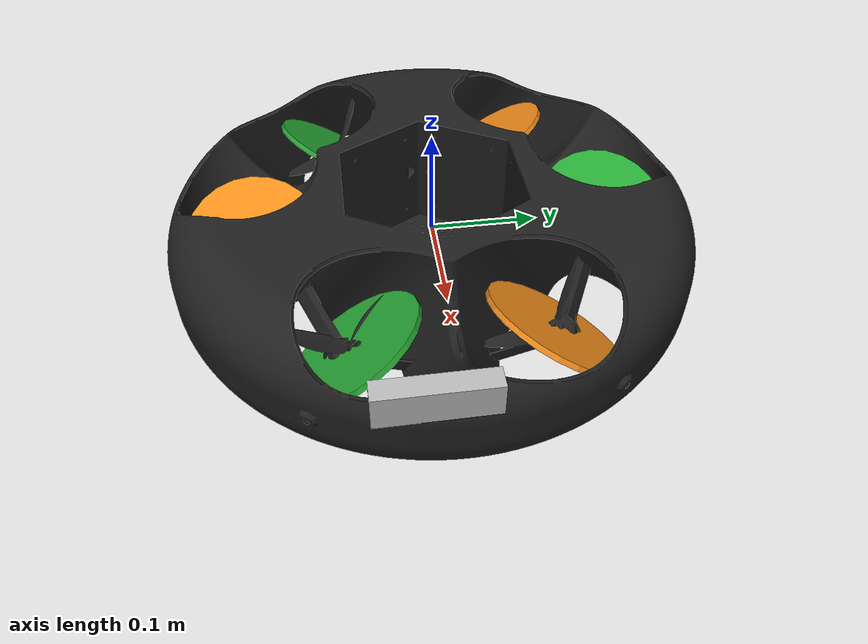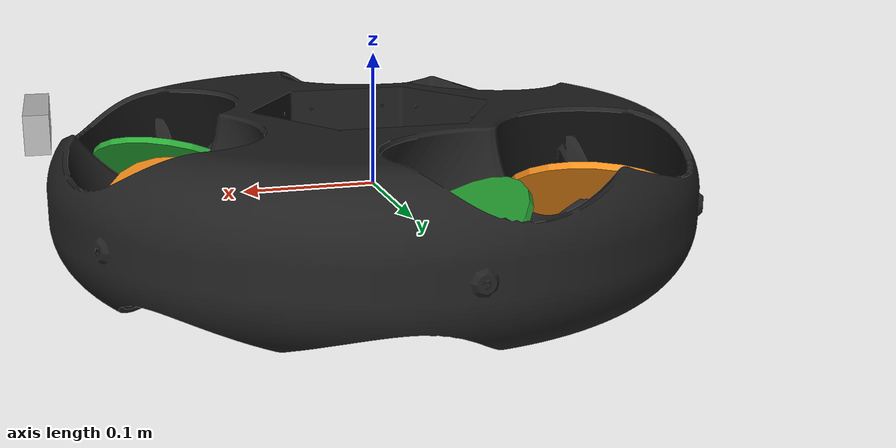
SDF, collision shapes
<?xml version="1.0" encoding="UTF-8"?>
<sdf version='1.9'>
  <model name='space_cobot'>
    <self_collide>false</self_collide>
    <static>false</static>

    <link name='base_link'>
      <pose>0 0 0 0 -0 0</pose>

      <inertial>
        <pose>0 0 0 0 -0 0</pose>
        <mass>3.4</mass>
        <inertia>
          <ixx>0.085225</ixx>
          <ixy>0</ixy>
          <ixz>0</ixz>
          <iyy>0.085225</iyy>
          <iyz>0</iyz>
          <izz>0.085225</izz>
        </inertia>
      </inertial>

      <collision name='base_link_inertia_collision'>
        <pose>0 0 0 0 -0 0</pose>
        <geometry>
          <mesh>
            <scale>1.0 1.0 1.0</scale>
            <uri>model://space_cobot/meshes/cobot.dae</uri>
          </mesh>
        </geometry>
        <surface>
          <contact>
            <ode>
              <min_depth>0.001</min_depth>
              <max_vel>0</max_vel>
            </ode>
          </contact>
          <friction>
            <ode/>
          </friction>
        </surface>
      </collision>

      <visual name='base_link_inertia_visual'>
        <pose>0.0 0.0 0.0 0 -0 0</pose>
        <geometry>
          <mesh>
            <scale>1.0 1.0 1.0</scale>
            <uri>model://space_cobot/meshes/cobot.dae</uri>
          </mesh>
        </geometry>
        <material>
          <script>
            <name>Gazebo/Black</name>
            <uri>file://media/materials/scripts/gazebo.material</uri>
          </script>
        </material>
      </visual>

      <!-- Since our robot is to be used in a zero G environment, we disable gravity -->
      <gravity>false</gravity>

      <velocity_decay/>
      <sensor name="air_pressure_sensor" type="air_pressure">
        <always_on>1</always_on>
        <update_rate>50</update_rate>
        <air_pressure>
          <pressure>
            <noise type="gaussian">
              <mean>0</mean>
              <stddev>0.01</stddev>
            </noise>
          </pressure>
        </air_pressure>
      </sensor>
      <sensor name="imu_sensor" type="imu">
        <always_on>1</always_on>
        <update_rate>250</update_rate>

        <imu>

          <angular_velocity>
            <x>
              <noise type="gaussian">
                <mean>0</mean>
                <stddev>0.00018665</stddev>
                <dynamic_bias_stddev>3.8785e-05</dynamic_bias_stddev>
                <dynamic_bias_correlation_time>1000</dynamic_bias_correlation_time>
              </noise>
            </x>

            <y>
              <noise type="gaussian">
                <mean>0</mean>
                <stddev>0.00018665</stddev>
                <dynamic_bias_stddev>3.8785e-05</dynamic_bias_stddev>
                <dynamic_bias_correlation_time>1000</dynamic_bias_correlation_time>
              </noise>
            </y>

            <z>
              <noise type="gaussian">
                <mean>0</mean>
                <stddev>0.00018665</stddev>
                <dynamic_bias_stddev>3.8785e-05</dynamic_bias_stddev>
                <dynamic_bias_correlation_time>1000</dynamic_bias_correlation_time>
              </noise>
            </z>

          </angular_velocity>

          <linear_acceleration>

            <x>
              <noise type="gaussian">
                <mean>0</mean>
                <stddev>0.00186</stddev>
                <dynamic_bias_stddev>0.006</dynamic_bias_stddev>
                <dynamic_bias_correlation_time>300</dynamic_bias_correlation_time>
              </noise>
            </x>

            <y>
              <noise type="gaussian">
                <mean>0</mean>
                <stddev>0.00186</stddev>
                <dynamic_bias_stddev>0.006</dynamic_bias_stddev>
                <dynamic_bias_correlation_time>300</dynamic_bias_correlation_time>
              </noise>
            </y>

            <z>
              <noise type="gaussian">
                <mean>0</mean>
                <stddev>0.00186</stddev>
                <dynamic_bias_stddev>0.006</dynamic_bias_stddev>
                <dynamic_bias_correlation_time>300</dynamic_bias_correlation_time>
              </noise>
            </z>

          </linear_acceleration>

        </imu>

      </sensor>
      <sensor name="navsat_sensor" type="navsat">
        <always_on>1</always_on>
        <update_rate>30</update_rate>
      </sensor>
    </link>

    <!-- Camera Configuration -->
    <include merge='true'>
      <uri>model://OakD-Lite</uri>
      <pose>0.24 0.0 0.04 0 0 0</pose>
    </include>
    <joint name="Camera Joint" type="fixed">
      <parent>base_link</parent>
      <child>OakD-Lite/base_link</child>
      <pose relative_to="base_link">0.0 0.0 0.0 0.0 0.0 0.0</pose>

    </joint>

    <!-- Rotor Configuration -->
    <!-- Rotor 0 and Rotor 3 form a pair -->
    <link name='rotor_0'>
      <pose>0.0 0.1655 0.0 0.0 0.610 0.0</pose>
      <inertial>
        <pose>0 0 0 0 -0 0</pose>
        <mass>0.005</mass>
        <inertia>
          <ixx>9.75e-07</ixx>
          <ixy>0</ixy>
          <ixz>0</ixz>
          <iyy>0.000273104</iyy>
          <iyz>0</iyz>
          <izz>0.000274004</izz>
        </inertia>
      </inertial>
      <collision name='rotor_0_collision'>
        <pose>0 0 0 0 -0 0</pose>
        <geometry>
          <cylinder>
            <length>0.005</length>
            <radius>0.064</radius>
          </cylinder>
        </geometry>
        <surface>
          <contact>
            <ode/>
          </contact>
          <friction>
            <ode/>
          </friction>
        </surface>
      </collision>
      <visual name='rotor_0_visual'>
        <pose>0 0 0 0 -0 0</pose>
        <geometry>
          <mesh>
            <scale>0.45 0.45 0.45</scale>
            <uri>model://omnicopter/meshes/iris_prop_ccw.dae</uri>
          </mesh>
        </geometry>
        <material>
          <script>
            <name>Gazebo/Green</name>
            <uri>file://media/materials/scripts/gazebo.material</uri>
          </script>
        </material>
      </visual>
      <gravity>1</gravity>
      <velocity_decay/>
    </link>
    <joint name='rotor_0_joint' type='revolute'>
      <child>rotor_0</child>
      <parent>base_link</parent>
      <axis>
        <limit>
          <lower>-1e+16</lower>
          <upper>1e+16</upper>
        </limit>
        <dynamics>
          <spring_reference>0</spring_reference>
          <spring_stiffness>0</spring_stiffness>
        </dynamics>
      </axis>
    </joint>
    <plugin filename="gz-sim-multicopter-motor-model-system" name="gz::sim::systems::MulticopterMotorModel">
      <jointName>rotor_0_joint</jointName>
      <linkName>rotor_0</linkName>
      <turningDirection>cw</turningDirection>
      <timeConstantUp>0.0125</timeConstantUp>
      <timeConstantDown>0.025</timeConstantDown>
      <maxRotVelocity>30000.0</maxRotVelocity>
      <motorConstant>2.50972e-05</motorConstant>
      <momentConstant>0.06</momentConstant>
      <commandSubTopic>command/motor_speed</commandSubTopic>
      <motorNumber>0</motorNumber>
      <rotorDragCoefficient>0.000175</rotorDragCoefficient>
      <rollingMomentCoefficient>1e-06</rollingMomentCoefficient>
      <rotorVelocitySlowdownSim>10</rotorVelocitySlowdownSim>
      <motorType>velocity</motorType>
    </plugin>

    <link name='rotor_3'>
      <pose>0.0 -0.1655 0.0 0.0 0.610 0.0</pose>
      <inertial>
        <pose>0 0 0 0 -0 0</pose>
        <mass>0.005</mass>
        <inertia>
          <ixx>9.75e-07</ixx>
          <ixy>0</ixy>
          <ixz>0</ixz>
          <iyy>0.000273104</iyy>
          <iyz>0</iyz>
          <izz>0.000274004</izz>
        </inertia>
      </inertial>
      <collision name='rotor_3_collision'>
        <pose>0 0 0 0 -0 0</pose>
        <geometry>
          <cylinder>
            <length>0.005</length>
            <radius>0.064</radius>
          </cylinder>
        </geometry>
        <surface>
          <contact>
            <ode/>
          </contact>
          <friction>
            <ode/>
          </friction>
        </surface>
      </collision>
      <visual name='rotor_3_visual'>
        <pose>0 0 0 0 -0 0</pose>
        <geometry>
          <mesh>
            <scale>0.45 0.45 0.45</scale>
            <uri>model://omnicopter/meshes/iris_prop_ccw.dae</uri>
          </mesh>
        </geometry>
        <material>
          <script>
            <name>Gazebo/Orange</name>
            <uri>file://media/materials/scripts/gazebo.material</uri>
          </script>
        </material>
      </visual>
      <gravity>1</gravity>
      <velocity_decay/>
    </link>
    <joint name='rotor_3_joint' type='revolute'>
      <child>rotor_3</child>
      <parent>base_link</parent>
      <axis>
        <limit>
          <lower>-1e+16</lower>
          <upper>1e+16</upper>
        </limit>
        <dynamics>
          <spring_reference>0</spring_reference>
          <spring_stiffness>0</spring_stiffness>
        </dynamics>
      </axis>
    </joint>
    <plugin filename="gz-sim-multicopter-motor-model-system" name="gz::sim::systems::MulticopterMotorModel">
      <jointName>rotor_3_joint</jointName>
      <linkName>rotor_3</linkName>
      <turningDirection>ccw</turningDirection>
      <timeConstantUp>0.0125</timeConstantUp>
      <timeConstantDown>0.025</timeConstantDown>
      <maxRotVelocity>30000.0</maxRotVelocity>
      <motorConstant>2.50972e-05</motorConstant>
      <momentConstant>0.06</momentConstant>
      <commandSubTopic>command/motor_speed</commandSubTopic>
      <motorNumber>3</motorNumber>
      <rotorDragCoefficient>0.000175</rotorDragCoefficient>
      <rollingMomentCoefficient>1e-06</rollingMomentCoefficient>
      <rotorVelocitySlowdownSim>10</rotorVelocitySlowdownSim>
      <motorType>velocity</motorType>
    </plugin>

    <!-- Rotor 1 and Rotor 4 form a pair -->
    <link name='rotor_4'>
      <pose>-0.1433 -0.0827 0.0 -0.5282755 -0.305 0.0</pose>
      <inertial>
        <pose>0 0 0 0 -0 0</pose>
        <mass>0.005</mass>
        <inertia>
          <ixx>9.75e-07</ixx>
          <ixy>0</ixy>
          <ixz>0</ixz>
          <iyy>0.000273104</iyy>
          <iyz>0</iyz>
          <izz>0.000274004</izz>
        </inertia>
      </inertial>
      <collision name='rotor_4_collision'>
        <pose>0 0 0 0 -0 0</pose>
        <geometry>
          <cylinder>
            <length>0.005</length>
            <radius>0.064</radius>
          </cylinder>
        </geometry>
        <surface>
          <contact>
            <ode/>
          </contact>
          <friction>
            <ode/>
          </friction>
        </surface>
      </collision>
      <visual name='rotor_4_visual'>
        <pose>0 0 0 0 -0 0</pose>
        <geometry>
          <mesh>
            <scale>0.45 0.45 0.45</scale>
            <uri>model://omnicopter/meshes/iris_prop_ccw.dae</uri>
          </mesh>
        </geometry>
        <material>
          <script>
            <name>Gazebo/Green</name>
            <uri>file://media/materials/scripts/gazebo.material</uri>
          </script>
        </material>
      </visual>
      <gravity>1</gravity>
      <velocity_decay/>
    </link>
    <joint name='rotor_4_joint' type='revolute'>
      <child>rotor_4</child>
      <parent>base_link</parent>
      <axis>
        <limit>
          <lower>-1e+16</lower>
          <upper>1e+16</upper>
        </limit>
        <dynamics>
          <spring_reference>0</spring_reference>
          <spring_stiffness>0</spring_stiffness>
        </dynamics>
      </axis>
    </joint>
    <plugin filename="gz-sim-multicopter-motor-model-system" name="gz::sim::systems::MulticopterMotorModel">
      <jointName>rotor_4_joint</jointName>
      <linkName>rotor_4</linkName>
      <turningDirection>cw</turningDirection>
      <timeConstantUp>0.0125</timeConstantUp>
      <timeConstantDown>0.025</timeConstantDown>
      <maxRotVelocity>30000.0</maxRotVelocity>
      <motorConstant>2.50972e-05</motorConstant>
      <momentConstant>0.06</momentConstant>
      <commandSubTopic>command/motor_speed</commandSubTopic>
      <motorNumber>4</motorNumber>
      <rotorDragCoefficient>0.000175</rotorDragCoefficient>
      <rollingMomentCoefficient>1e-06</rollingMomentCoefficient>
      <rotorVelocitySlowdownSim>10</rotorVelocitySlowdownSim>
      <motorType>velocity</motorType>
    </plugin>

    <link name='rotor_1'>
      <pose>0.1433 0.0827 0.0 -0.5282755 -0.305 0.0</pose>
      <inertial>
        <pose>0 0 0 0 -0 0</pose>
        <mass>0.005</mass>
        <inertia>
          <ixx>9.75e-07</ixx>
          <ixy>0</ixy>
          <ixz>0</ixz>
          <iyy>0.000273104</iyy>
          <iyz>0</iyz>
          <izz>0.000274004</izz>
        </inertia>
      </inertial>
      <collision name='rotor_1_collision'>
        <pose>0 0 0 0 -0 0</pose>
        <geometry>
          <cylinder>
            <length>0.005</length>
            <radius>0.064</radius>
          </cylinder>
        </geometry>
        <surface>
          <contact>
            <ode/>
          </contact>
          <friction>
            <ode/>
          </friction>
        </surface>
      </collision>
      <visual name='rotor_1_visual'>
        <pose>0 0 0 0 -0 0</pose>
        <geometry>
          <mesh>
            <scale>0.45 0.45 0.45</scale>
            <uri>model://omnicopter/meshes/iris_prop_ccw.dae</uri>
          </mesh>
        </geometry>
        <material>
          <script>
            <name>Gazebo/Orange</name>
            <uri>file://media/materials/scripts/gazebo.material</uri>
          </script>
        </material>
      </visual>
      <gravity>1</gravity>
      <velocity_decay/>
    </link>
    <joint name='rotor_1_joint' type='revolute'>
      <child>rotor_1</child>
      <parent>base_link</parent>
      <axis>
        <limit>
          <lower>-1e+16</lower>
          <upper>1e+16</upper>
        </limit>
        <dynamics>
          <spring_reference>0</spring_reference>
          <spring_stiffness>0</spring_stiffness>
        </dynamics>
      </axis>
    </joint>
    <plugin filename="gz-sim-multicopter-motor-model-system" name="gz::sim::systems::MulticopterMotorModel">
      <jointName>rotor_1_joint</jointName>
      <linkName>rotor_1</linkName>
      <turningDirection>ccw</turningDirection>
      <timeConstantUp>0.0125</timeConstantUp>
      <timeConstantDown>0.025</timeConstantDown>
      <maxRotVelocity>30000.0</maxRotVelocity>
      <motorConstant>2.50972e-05</motorConstant>
      <momentConstant>0.06</momentConstant>
      <commandSubTopic>command/motor_speed</commandSubTopic>
      <motorNumber>1</motorNumber>
      <rotorDragCoefficient>0.000175</rotorDragCoefficient>
      <rollingMomentCoefficient>1e-06</rollingMomentCoefficient>
      <rotorVelocitySlowdownSim>10</rotorVelocitySlowdownSim>
      <motorType>velocity</motorType>
    </plugin>

    <!-- Rotor 2 and Rotor 5 form a pair -->
    <link name='rotor_2'>
      <pose>0.1433 -0.0827 0.0 0.5282755 -0.305 0.0</pose>

      <inertial>
        <pose>0 0 0 0 -0 0</pose>
        <mass>0.005</mass>
        <inertia>
          <ixx>9.75e-07</ixx>
          <ixy>0</ixy>
          <ixz>0</ixz>
          <iyy>0.000273104</iyy>
          <iyz>0</iyz>
          <izz>0.000274004</izz>
        </inertia>
      </inertial>
      <collision name='rotor_2_collision'>
        <pose>0 0 0 0 -0 0</pose>
        <geometry>
          <cylinder>
            <length>0.005</length>
            <radius>0.064</radius>
          </cylinder>
        </geometry>
        <surface>
          <contact>
            <ode/>
          </contact>
          <friction>
            <ode/>
          </friction>
        </surface>
      </collision>
      <visual name='rotor_2_visual'>
        <pose>0 0 0 0 -0 0</pose>
        <geometry>
          <mesh>
            <scale>0.45 0.45 0.45</scale>
            <uri>model://omnicopter/meshes/iris_prop_ccw.dae</uri>
          </mesh>
        </geometry>
        <material>
          <script>
            <name>Gazebo/Green</name>
            <uri>file://media/materials/scripts/gazebo.material</uri>
          </script>
        </material>
      </visual>
      <gravity>1</gravity>
      <velocity_decay/>
    </link>
    <joint name='rotor_2_joint' type='revolute'>
      <child>rotor_2</child>
      <parent>base_link</parent>
      <axis>
        <limit>
          <lower>-1e+16</lower>
          <upper>1e+16</upper>
        </limit>
        <dynamics>
          <spring_reference>0</spring_reference>
          <spring_stiffness>0</spring_stiffness>
        </dynamics>
      </axis>
    </joint>
    <plugin filename="gz-sim-multicopter-motor-model-system" name="gz::sim::systems::MulticopterMotorModel">
      <jointName>rotor_2_joint</jointName>
      <linkName>rotor_2</linkName>
      <turningDirection>cw</turningDirection>
      <timeConstantUp>0.0125</timeConstantUp>
      <timeConstantDown>0.025</timeConstantDown>
      <maxRotVelocity>30000.0</maxRotVelocity>
      <motorConstant>2.50972e-05</motorConstant>
      <momentConstant>0.06</momentConstant>
      <commandSubTopic>command/motor_speed</commandSubTopic>
      <motorNumber>2</motorNumber>
      <rotorDragCoefficient>0.000175</rotorDragCoefficient>
      <rollingMomentCoefficient>1e-06</rollingMomentCoefficient>
      <rotorVelocitySlowdownSim>10</rotorVelocitySlowdownSim>
      <motorType>velocity</motorType>
    </plugin>

    <link name='rotor_5'>
      <pose>-0.1433 0.0827 0.0 0.5282755 -0.305 0.0</pose>
      <inertial>
        <pose>0 0 0 0 -0 0</pose>
        <mass>0.005</mass>
        <inertia>
          <ixx>9.75e-07</ixx>
          <ixy>0</ixy>
          <ixz>0</ixz>
          <iyy>0.000273104</iyy>
          <iyz>0</iyz>
          <izz>0.000274004</izz>
        </inertia>
      </inertial>
      <collision name='rotor_5_collision'>
        <pose>0 0 0 0 -0 0</pose>
        <geometry>
          <cylinder>
            <length>0.005</length>
            <radius>0.064</radius>
          </cylinder>
        </geometry>
        <surface>
          <contact>
            <ode/>
          </contact>
          <friction>
            <ode/>
          </friction>
        </surface>
      </collision>
      <visual name='rotor_5_visual'>
        <pose>0 0 0 0 -0 0</pose>
        <geometry>
          <mesh>
            <scale>0.45 0.45 0.45</scale>
            <uri>model://omnicopter/meshes/iris_prop_ccw.dae</uri>
          </mesh>
        </geometry>
        <material>
          <script>
            <name>Gazebo/Orange</name>
            <uri>file://media/materials/scripts/gazebo.material</uri>
          </script>
        </material>
      </visual>
      <gravity>1</gravity>
      <velocity_decay/>
    </link>
    <joint name='rotor_5_joint' type='revolute'>
      <child>rotor_5</child>
      <parent>base_link</parent>
      <axis>
        <limit>
          <lower>-1e+16</lower>
          <upper>1e+16</upper>
        </limit>
        <dynamics>
          <spring_reference>0</spring_reference>
          <spring_stiffness>0</spring_stiffness>
        </dynamics>
      </axis>
    </joint>
    <plugin filename="gz-sim-multicopter-motor-model-system" name="gz::sim::systems::MulticopterMotorModel">
      <jointName>rotor_5_joint</jointName>
      <linkName>rotor_5</linkName>
      <turningDirection>ccw</turningDirection>
      <timeConstantUp>0.0125</timeConstantUp>
      <timeConstantDown>0.025</timeConstantDown>
      <maxRotVelocity>30000</maxRotVelocity>
      <motorConstant>2.50972e-05</motorConstant>
      <momentConstant>0.06</momentConstant>
      <commandSubTopic>command/motor_speed</commandSubTopic>
      <motorNumber>5</motorNumber>
      <rotorDragCoefficient>0.000175</rotorDragCoefficient>
      <rollingMomentCoefficient>1e-06</rollingMomentCoefficient>
      <rotorVelocitySlowdownSim>10</rotorVelocitySlowdownSim>
      <motorType>velocity</motorType>
    </plugin>

  </model>
</sdf>

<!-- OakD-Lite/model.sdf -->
<sdf version='1.9'>
  <model name='OakD-Lite'>
    <pose>0 0 0 0 0 0</pose>
    <self_collide>false</self_collide>
    <static>false</static>
    <link name="camera_link">
      <inertial>
        <pose>0.00358 -0.03 .014 0 0 0</pose>
        <mass>0.061</mass>
        <inertia>
          <ixx>0.0000460804</ixx>
          <ixy>0</ixy>
          <ixz>0</ixz>
          <iyy>0.0000055421</iyy>
          <iyz>0</iyz>
          <izz>0.0000436519</izz>
        </inertia>
      </inertial>
      <visual name="OakD-Lite/visual">
        <pose>0 0 0 0 0 0</pose>
        <geometry>
          <mesh>
            <scale>1 1 1</scale>
            <uri>model://OakD-Lite/meshes/OakDLite.dae</uri>
          </mesh>
        </geometry>
      </visual>
      <collision name="OakD-Lite/collision">
        <pose>0.00358 -0.03 .014 0 0 0</pose>
        <geometry>
          <box>
            <size>0.0175 0.091 0.028</size>
          </box>
        </geometry>
      </collision>
      <sensor name="IMX214" type="camera">
        <pose>0.01233 -0.03 .01878 0 0 0</pose>
        <camera>
          <horizontal_fov>1.204</horizontal_fov>
          <image>
            <width>1920</width>
            <height>1080</height>
          </image>
          <clip>
            <near>0.1</near>
            <far>100</far>
          </clip>
        </camera>
        <always_on>1</always_on>
        <update_rate>30</update_rate>
        <visualize>true</visualize>
      </sensor>
      <sensor name="StereoOV7251" type="depth_camera">
        <pose>0.01233 -0.03 .01878 0 0 0</pose>
        <camera>
          <horizontal_fov>1.274</horizontal_fov>
          <image>
            <width>640</width>
            <height>480</height>
            <format>R_FLOAT32</format>
          </image>
          <clip>
            <near>0.2</near>
            <far>19.1</far>
          </clip>
        </camera>
        <always_on>1</always_on>
        <update_rate>30</update_rate>
        <visualize>true</visualize>
        <topic>depth_camera</topic>
      </sensor>
      <gravity>true</gravity>
      <velocity_decay/>
    </link>
  </model>
</sdf>
